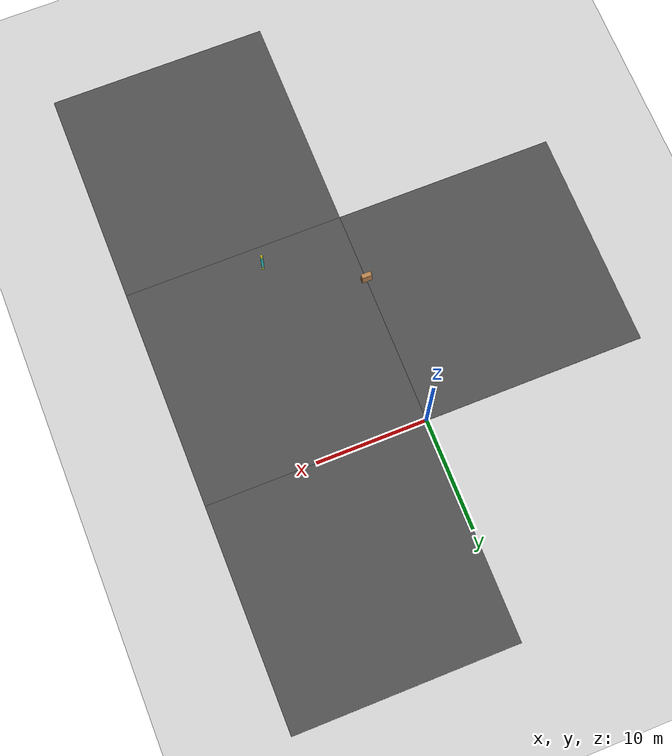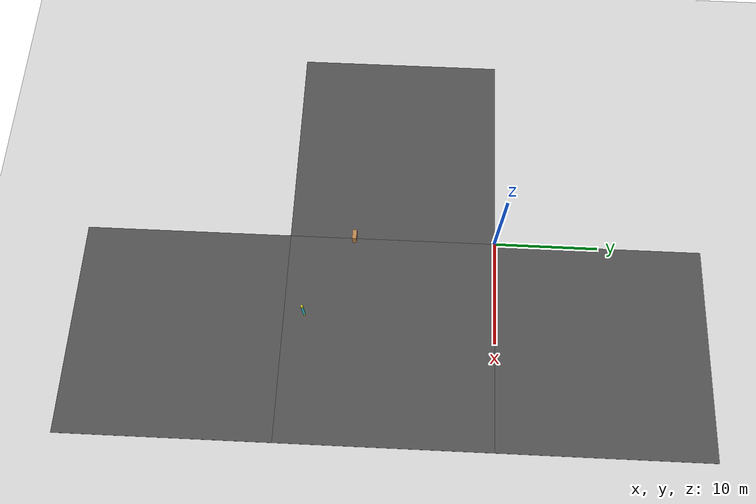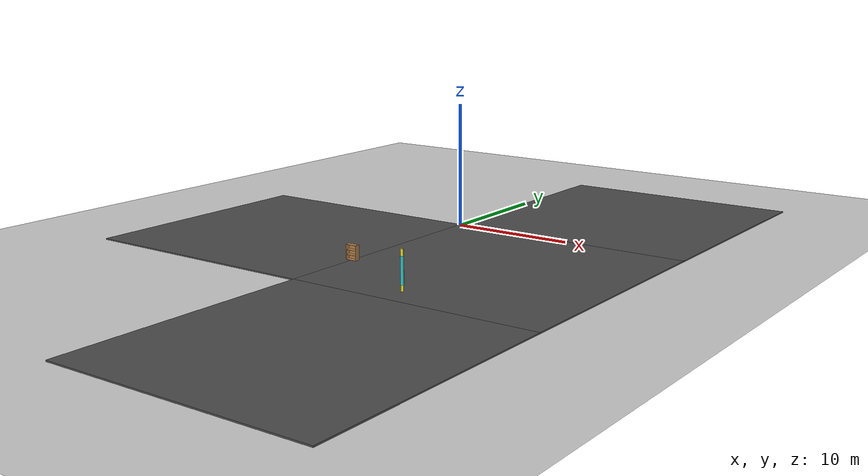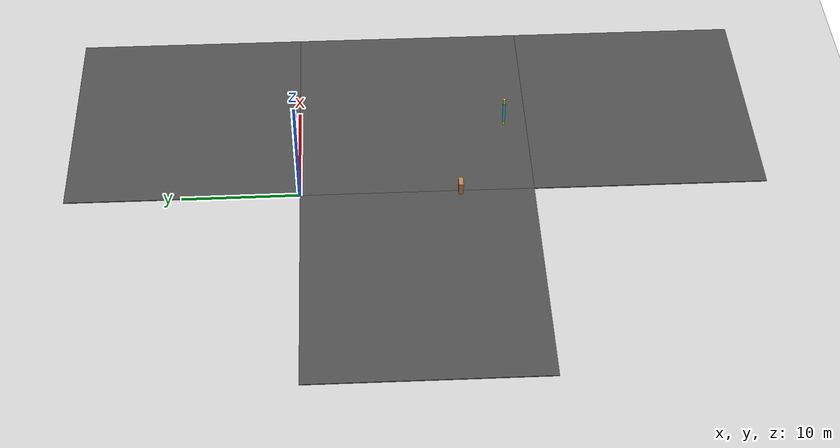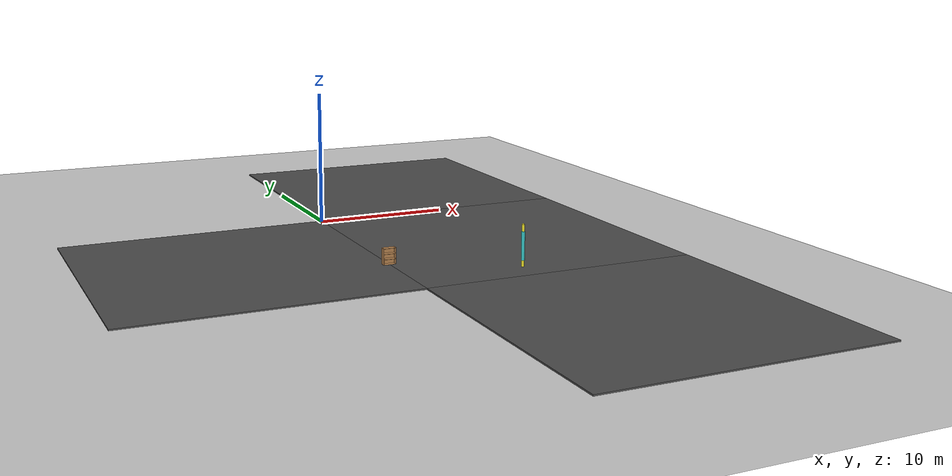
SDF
<sdf version="1.4">
 <world name="default">
  <model name="ground_plane">
   <static>1</static>
   <link name="link">
    <collision name="collision">
     <geometry><plane><normal>0 0 1</normal><size>100 100</size></plane></geometry>
     <surface><friction><ode><mu>100</mu><mu2>50</mu2></ode></friction></surface>
    </collision>
    <visual name="visual">
     <cast_shadows>0</cast_shadows>
     <geometry><plane><normal>0 0 1</normal><size>100 100</size></plane></geometry>
     <material>
      <script><uri>file://media/materials/scripts/gazebo.material</uri><name>Gazebo/Grey</name></script>
     </material>
    </visual>
    <velocity_decay><linear>0</linear><angular>0</angular></velocity_decay>
   </link>
  </model>
  <model name="mikey_goal1">
   <pose>8 -18 1.5 0 -0 0</pose>
   <link name="link">
    <inertial>
     <mass>1000</mass>
     <inertia><ixx>1000</ixx><ixy>0</ixy><ixz>0</ixz><iyy>1000</iyy><iyz>0</iyz><izz>1000</izz></inertia>
    </inertial>
    <visual name="visual">
     <geometry><cylinder><radius>0.1</radius><length>3</length></cylinder></geometry>
     <material>
      <script><uri>file://media/materials/scripts/gazebo.material</uri><name>Gazebo/Yellow</name></script>
     </material>
    </visual>
    <velocity_decay><linear>0</linear><angular>0</angular></velocity_decay>
   </link>
   <static>1</static>
  </model>
  <model name="shredder_goal5">
   <pose>8 -18 1.5 0 -0 0</pose>
   <link name="link">
    <inertial>
     <mass>1000</mass>
     <inertia><ixx>1000</ixx><ixy>0</ixy><ixz>0</ixz><iyy>1000</iyy><iyz>0</iyz><izz>1000</izz></inertia>
    </inertial>
    <visual name="visual">
     <geometry><cylinder><radius>0.12</radius><length>2</length></cylinder></geometry>
     <material>
      <script><uri>file://media/materials/scripts/gazebo.material</uri><name>Gazebo/Turquoise</name></script>
     </material>
    </visual>
    <velocity_decay><linear>0</linear><angular>0</angular></velocity_decay>
   </link>
   <static>1</static>
  </model>
  <model name="asphalt_plane">
   <static>1</static>
   <link name="link">
    <collision name="collision"><geometry><box><size>20 20 0.1</size></box></geometry></collision>
    <visual name="visual">
     <cast_shadows>0</cast_shadows>
     <geometry><box><size>20 20 0.1</size></box></geometry>
     <material>
      <script>
       <uri>model://asphalt_plane/materials/scripts</uri>
       <uri>model://asphalt_plane/materials/textures</uri>
       <name>vrc/asphalt</name>
      </script>
     </material>
    </visual>
    <velocity_decay><linear>0</linear><angular>0</angular></velocity_decay>
   </link>
   <pose>10 10 0 0 -0 0</pose>
  </model>
  <model name="asphalt_plane_1">
   <static>1</static>
   <link name="link">
    <collision name="collision"><geometry><box><size>20 20 0.1</size></box></geometry></collision>
    <visual name="visual">
     <cast_shadows>0</cast_shadows>
     <geometry><box><size>20 20 0.1</size></box></geometry>
     <material>
      <script>
       <uri>model://asphalt_plane/materials/scripts</uri>
       <uri>model://asphalt_plane/materials/textures</uri>
       <name>vrc/asphalt</name>
      </script>
     </material>
    </visual>
    <velocity_decay><linear>0</linear><angular>0</angular></velocity_decay>
   </link>
   <pose>10 -10 0 0 -0 0</pose>
  </model>
  <model name="asphalt_plane_2">
   <static>1</static>
   <link name="link">
    <collision name="collision"><geometry><box><size>20 20 0.1</size></box></geometry></collision>
    <visual name="visual">
     <cast_shadows>0</cast_shadows>
     <geometry><box><size>20 20 0.1</size></box></geometry>
     <material>
      <script>
       <uri>model://asphalt_plane/materials/scripts</uri>
       <uri>model://asphalt_plane/materials/textures</uri>
       <name>vrc/asphalt</name>
      </script>
     </material>
    </visual>
    <velocity_decay><linear>0</linear><angular>0</angular></velocity_decay>
   </link>
   <pose>-10 -10 0 0 -0 0</pose>
  </model>
  <model name="asphalt_plane_7">
   <static>1</static>
   <link name="link">
    <collision name="collision"><geometry><box><size>20 20 0.1</size></box></geometry></collision>
    <visual name="visual">
     <cast_shadows>0</cast_shadows>
     <geometry><box><size>20 20 0.1</size></box></geometry>
     <material>
      <script>
       <uri>model://asphalt_plane/materials/scripts</uri>
       <uri>model://asphalt_plane/materials/textures</uri>
       <name>vrc/asphalt</name>
      </script>
     </material>
    </visual>
    <velocity_decay><linear>0</linear><angular>0</angular></velocity_decay>
   </link>
   <pose>10 -30 0 0 -0 0</pose>
  </model>
  <model name="bookshelf_0">
   <static>1</static>
   <link name="link">
    <inertial><mass>1</mass></inertial>
    <collision name="back">
     <pose>0 0.005 0.6 0 -0 0</pose>
     <geometry><box><size>0.9 0.01 1.2</size></box></geometry>
    </collision>
    <visual name="visual1">
     <pose>0 0.005 0.6 0 -0 0</pose>
     <geometry><box><size>0.9 0.01 1.2</size></box></geometry>
     <material>
      <script><uri>file://media/materials/scripts/gazebo.material</uri><name>Gazebo/Wood</name></script>
     </material>
    </visual>
    <collision name="left_side">
     <pose>0.45 -0.195 0.6 0 -0 0</pose>
     <geometry><box><size>0.02 0.4 1.2</size></box></geometry>
    </collision>
    <visual name="visual2">
     <pose>0.45 -0.195 0.6 0 -0 0</pose>
     <geometry><box><size>0.02 0.4 1.2</size></box></geometry>
     <material>
      <script><uri>file://media/materials/scripts/gazebo.material</uri><name>Gazebo/Wood</name></script>
     </material>
    </visual>
    <collision name="right_side">
     <pose>-0.45 -0.195 0.6 0 -0 0</pose>
     <geometry><box><size>0.02 0.4 1.2</size></box></geometry>
    </collision>
    <visual name="visual3">
     <pose>-0.45 -0.195 0.6 0 -0 0</pose>
     <geometry><box><size>0.02 0.4 1.2</size></box></geometry>
     <material>
      <script><uri>file://media/materials/scripts/gazebo.material</uri><name>Gazebo/Wood</name></script>
     </material>
    </visual>
    <collision name="bottom">
     <pose>0 -0.195 0.03 0 -0 0</pose>
     <geometry><box><size>0.88 0.4 0.06</size></box></geometry>
    </collision>
    <visual name="visual4">
     <pose>0 -0.195 0.03 0 -0 0</pose>
     <geometry><box><size>0.88 0.4 0.06</size></box></geometry>
     <material>
      <script><uri>file://media/materials/scripts/gazebo.material</uri><name>Gazebo/Wood</name></script>
     </material>
    </visual>
    <collision name="top">
     <pose>0 -0.195 1.19 0 -0 0</pose>
     <geometry><box><size>0.88 0.4 0.02</size></box></geometry>
    </collision>
    <visual name="visual5">
     <pose>0 -0.195 1.19 0 -0 0</pose>
     <geometry><box><size>0.88 0.4 0.02</size></box></geometry>
     <material>
      <script><uri>file://media/materials/scripts/gazebo.material</uri><name>Gazebo/Wood</name></script>
     </material>
    </visual>
    <collision name="low_shelf">
     <pose>0 -0.195 0.43 0 -0 0</pose>
     <geometry><box><size>0.88 0.4 0.02</size></box></geometry>
    </collision>
    <visual name="visual6">
     <pose>0 -0.195 0.43 0 -0 0</pose>
     <geometry><box><size>0.88 0.4 0.02</size></box></geometry>
     <material>
      <script><uri>file://media/materials/scripts/gazebo.material</uri><name>Gazebo/Wood</name></script>
     </material>
    </visual>
    <collision name="high_shelf">
     <pose>0 -0.195 0.8 0 -0 0</pose>
     <geometry><box><size>0.88 0.4 0.02</size></box></geometry>
    </collision>
    <visual name="visual7">
     <pose>0 -0.195 0.8 0 -0 0</pose>
     <geometry><box><size>0.88 0.4 0.02</size></box></geometry>
     <material>
      <script><uri>file://media/materials/scripts/gazebo.material</uri><name>Gazebo/Wood</name></script>
     </material>
    </visual>
    <velocity_decay><linear>0</linear><angular>0</angular></velocity_decay>
   </link>
   <pose>0 -13.5015 0 0 -0 0</pose>
  </model>
 </world>
</sdf>
